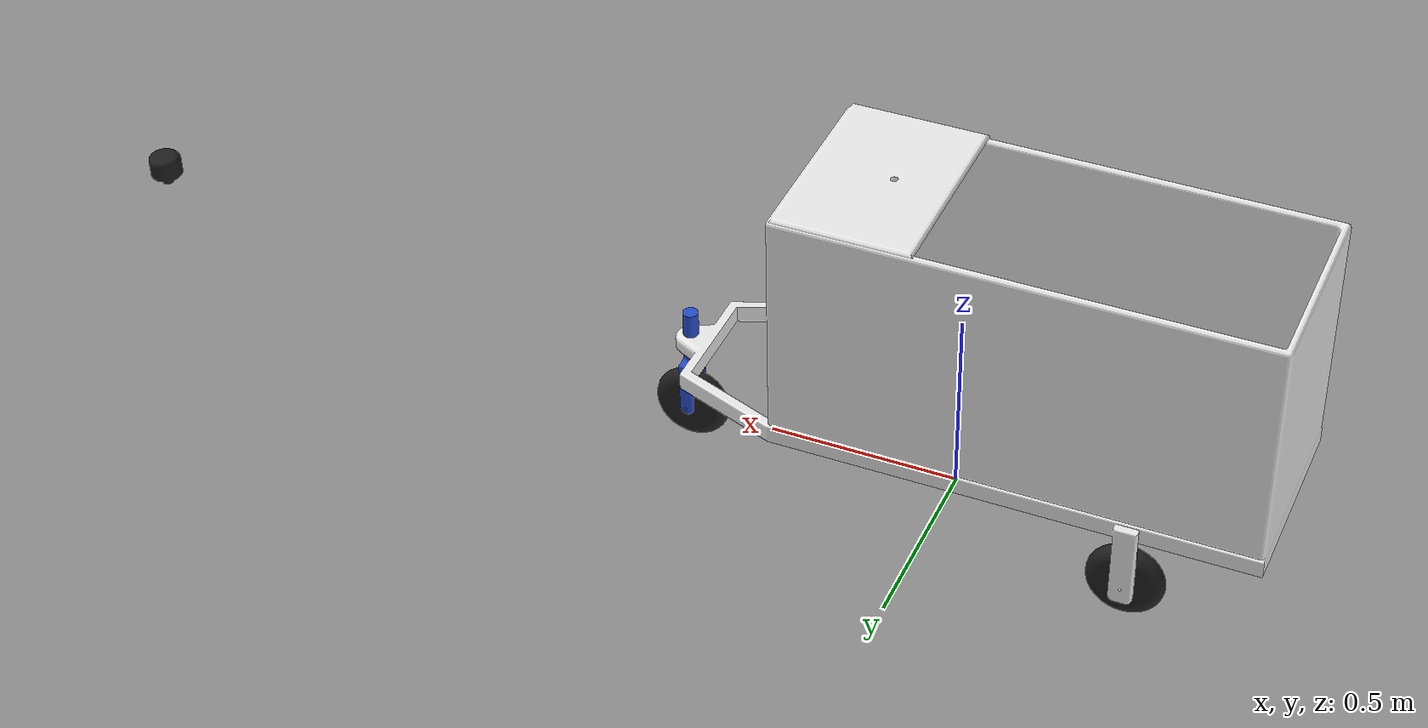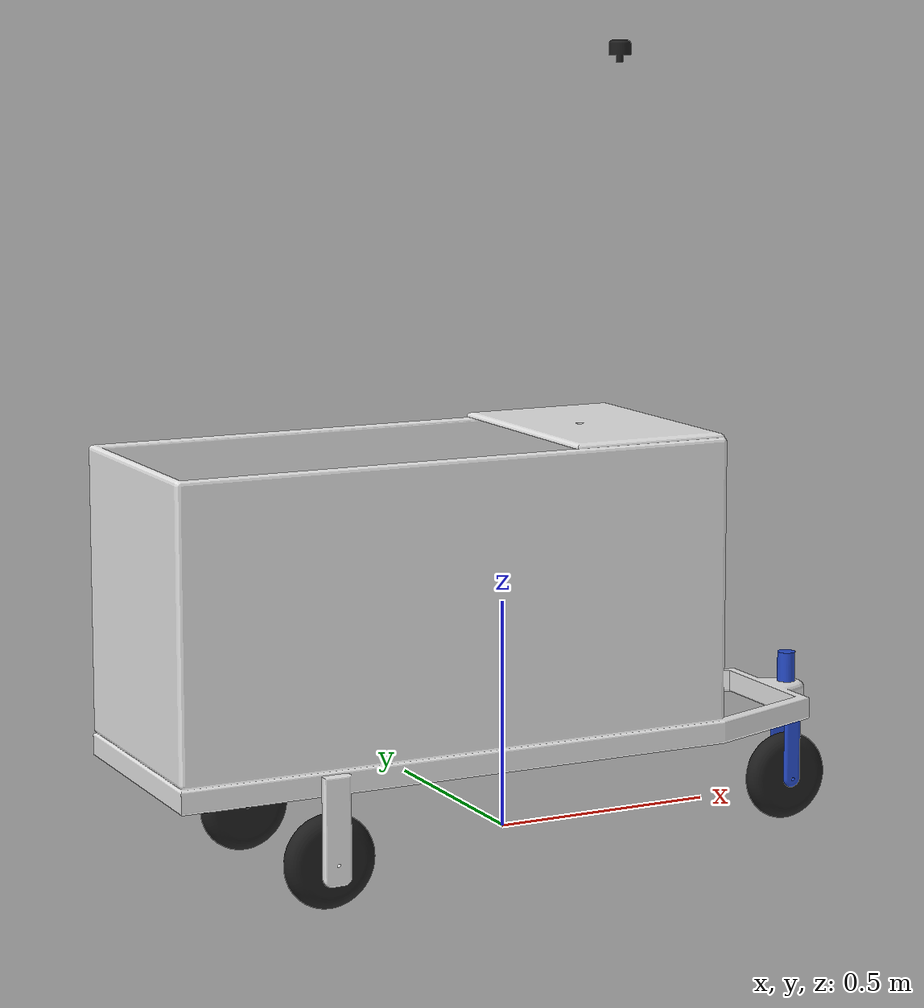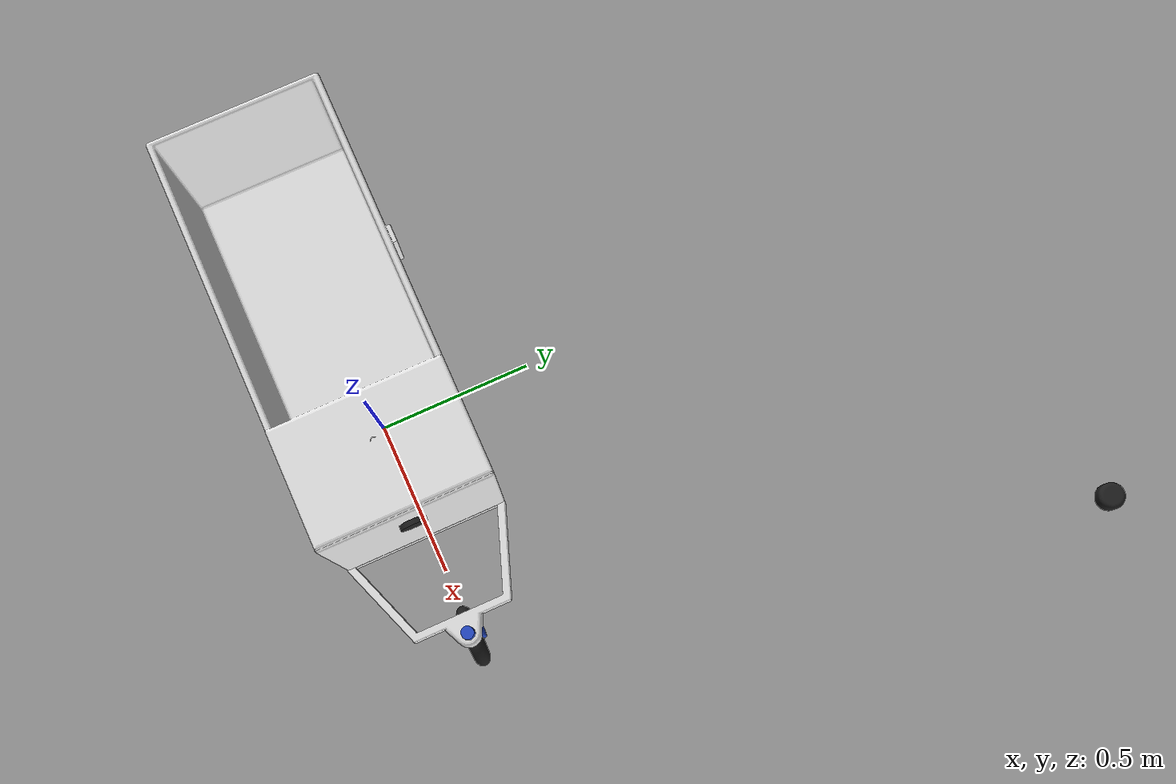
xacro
<?xml version="1.0"?>
<robot name="car"  xmlns:xacro="http://ros.org/wiki/xacro">
  <xacro:include filename="$(find car)/urdf/common_properties.xacro"/>
  <xacro:include filename="$(find car)/urdf/car.gazebo.xacro"/>
  <xacro:include filename="$(find car)/urdf/car.trans.xacro"/>

  <link name="base_footprint"/>

  <joint name="base_joint" type="fixed">
    <parent link="base_footprint"/>
    <child link="base_link"/>
    <origin xyz="0.0 0.0 0.010" rpy="0 0 0"/>
  </joint>

  <link name="base_link">

    <visual>
      <origin rpy="0.0 0 0" xyz="0 0 0"/>
      <geometry>
        <mesh filename="package://car/meshes/base_link.stl"/>
      </geometry>
      <material name="white"/>
    </visual>

    <collision>
      <origin rpy="0.0 0 0" xyz="0 0 0"/>
      <geometry>
        <mesh filename="package://car/meshes/base_link.stl"/>
      </geometry>
    </collision>

    <inertial>
      <origin
        xyz="0 0 0"
        rpy="0 0 0" />
      <mass
        value="30" />
      <inertia
        ixx="4.5974"
        ixy="0.00011729"
        ixz="-4.2221E-07"
        iyy="12.363"
        iyz="-2.3317E-08"
        izz="12.118" />
    </inertial>
  </link>

  <joint name="rWheelJoint" type="revolute">
    <parent link="base_link"/>
    <axis xyz="1 0 0"/>
    <limit effort="1000.0" lower="-10000000000000000000" upper="10000000000000000000" velocity="3000"/>
    <child link="rWheel"/>
    <origin rpy ="0 0 1.57079" xyz= "-0.515 0.231972 0.044"></origin>
  </joint>

  <link name="rWheel">

    <visual>
      <origin rpy="0 0 0" xyz="0 0 0"/>
      <geometry>
        <mesh filename="package://car/meshes/wheel.stl"/>
      </geometry>
      <material name="black"/>
    </visual>

    <collision>
      <origin rpy="0 1.570795 0" xyz="0 0 0"/>
      <geometry>
        <cylinder length="0.05" radius="0.1"/>
      </geometry>
    </collision>

    <inertial>
      <origin
        xyz="0 0 0"
        rpy="0 0 0" />
      <mass
        value="1" />
      <inertia
        ixx="0.0033492"
        ixy="-2.1115E-09"
        ixz="8.2422E-10"
        iyy="0.0033491"
        iyz="2.1116E-12"
        izz="0.0061933" />
    </inertial>
  </link>

  <joint name="lWheelJoint" type="revolute">
    <parent link="base_link"/>
    <axis xyz="1 0 0"/>
    <limit effort="1000.0" lower="-10000000000000000000" upper="10000000000000000000" velocity="3000"/>
    <child link="lWheel"/>
    <origin rpy ="0 0 1.57079" xyz= "-0.515 -0.231972 0.044"></origin>
  </joint>

  <link name="lWheel">

    <visual>
      <origin rpy="0 0 0" xyz="0 0 0"/>
      <geometry>
        <mesh filename="package://car/meshes/wheel.stl"/>
      </geometry>
      <material name="black"/>
    </visual>

    <collision>
      <origin rpy="0 1.570795 0" xyz="0 0 0"/>
      <geometry>
        <cylinder length="0.05" radius="0.1"/>
      </geometry>
    </collision>
    <inertial>
      <origin
        xyz="0 0 0"
        rpy="0 0 0" />
      <mass
        value="1" />
      <inertia
        ixx="0.0033492"
        ixy="-2.1115E-09"
        ixz="8.2422E-10"
        iyy="0.0033491"
        iyz="2.1116E-12"
        izz="0.0061933" />
    </inertial>
  </link>

  <joint name="steeringJoint" type="revolute">
    <parent link="base_link"/>
    <axis xyz="0 0 1"/>
    <limit effort="1000.0" lower="-10000000000000000000" upper="10000000000000000000" velocity="3000"/>
    <child link="steering"/>
    <origin rpy ="0 0 0" xyz= "0.7242695 0 0.20"></origin>
  </joint>

  <link name="steering">

    <visual>
      <origin rpy="0 0 0" xyz="0 0 0"/>
      <geometry>
        <mesh filename="package://car/meshes/steering.stl"/>
      </geometry>
      <material name="blue"/>
    </visual>

    <collision>
      <origin rpy="0.0 0 0" xyz="0 0 0"/>
      <geometry>
        <mesh filename="package://car/meshes/steering.stl"/>
      </geometry>
    </collision>

    <inertial>
      <origin
        xyz="-3.3084E-06 3.1923E-05 0.084264"
        rpy="0 0 0" />
      <mass
        value="0.33648" />
      <inertia
        ixx="0.0023809"
        ixy="2.2288E-08"
        ixz="-2.8298E-08"
        iyy="0.0022519"
        iyz="3.1939E-07"
        izz="0.00020117" />
    </inertial>
  </link>

  <joint name="fWheelJoint" type="revolute">
    <parent link="steering"/>
    <axis xyz="1 0 0"/>
    <limit effort="1000.0" lower="-10000000000000000000" upper="10000000000000000000" velocity="3000"/>
    <child link="fWheel"/>
    <origin rpy ="0 0 1.57079" xyz= "0 0 -0.185"></origin>
  </joint>

  <link name="fWheel">

    <visual>
      <origin rpy="0 0 0" xyz="0 0 0"/>
      <geometry>
        <mesh filename="package://car/meshes/wheel.stl"/>
      </geometry>
      <material name="black"/>
    </visual>

    <collision>
      <origin rpy="0 1.570795 0" xyz="0 0 0"/>
      <geometry>
        <cylinder length="0.05" radius="0.1"/>
      </geometry>
    </collision>

    <inertial>
      <origin
        xyz="0.035 -1.2831E-06 -5.0403E-08"
        rpy="0 0 0" />
      <mass
        value="1.3795" />
      <inertia
        ixx="0.0061933"
        ixy="2.1116E-12"
        ixz="8.2422E-10"
        iyy="0.0033491"
        iyz="-2.1115E-09"
        izz="0.0033492" />
    </inertial>
  </link>

  <!-- lidar_link -->

  <joint name="laserJoint" type="fixed">
    <parent link="base_link"/>
    <axis xyz="1 0 0"/>
    <limit effort="1000.0" lower="-10000000000000000000" upper="10000000000000000000" velocity="3000"/>
    <child link="hokuyo_lidar"/>
    <origin rpy ="0 0 1.57079" xyz= "0.19 0 0.88"></origin>
  </joint>

  <link name="hokuyo_lidar">

    <visual>
      <origin rpy="0 0 0" xyz="0 0 0"/>
      <geometry>
        <mesh filename="package://car/meshes/lidar.stl"/>
      </geometry>
      <material name="black"/>
    </visual>

    <collision>
      <origin rpy="0 1.570795 0" xyz="0 0 0"/>
      <geometry>
        <mesh filename="package://car/meshes/lidar.stl"/>
      </geometry>
    </collision>

    <inertial>
      <origin
        xyz="0.035 -1.2831E-06 -5.0403E-08"
        rpy="0 0 0" />
      <mass
        value="0.25" />
      <inertia
        ixx="0.0061933"
        ixy="2.1116E-12"
        ixz="8.2422E-10"
        iyy="0.0033491"
        iyz="-2.1115E-09"
        izz="0.0033492" />
    </inertial>
  </link>

  <joint name="cameraJoint" type="fixed">
    <parent link="base_link"/>
    <axis xyz="1 0 0"/>
    <limit effort="1000.0" lower="-10000000000000000000" upper="10000000000000000000" velocity="3000"/>
    <child link="camera"/>
    <origin rpy ="0 0 0" xyz= "0.40 0 0.70"></origin>
  </joint>

  <link name="camera">

    <visual>
      <origin rpy="0 0 0" xyz="0 0 0"/>
      <geometry>
        <mesh filename="package://car/meshes/camera2.stl"/>
      </geometry>
      <material name="black"/>
    </visual>

    <collision>
      <origin rpy="0 1.570795 0" xyz="0 0 0"/>
      <geometry>
        <mesh filename="package://car/meshes/camera2.stl"/>
      </geometry>
    </collision>

    <inertial>
      <origin
        xyz="0.035 -1.2831E-06 -5.0403E-08"
        rpy="0 0 0" />
      <mass
        value="0.25" />
      <inertia
        ixx="0.0061933"
        ixy="2.1116E-12"
        ixz="8.2422E-10"
        iyy="0.0033491"
        iyz="-2.1115E-09"
        izz="0.0033492" />
    </inertial>
  </link>

</robot>
